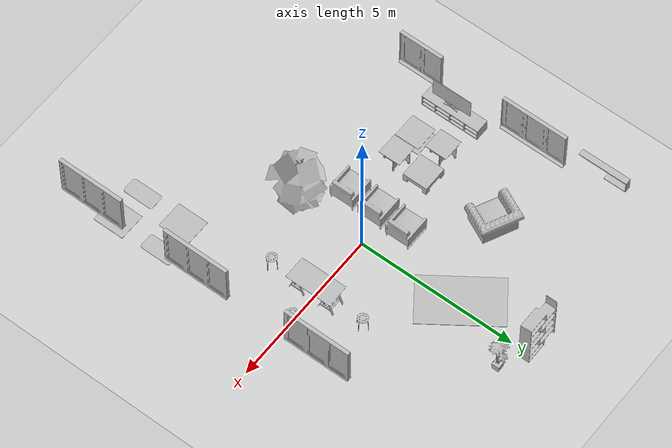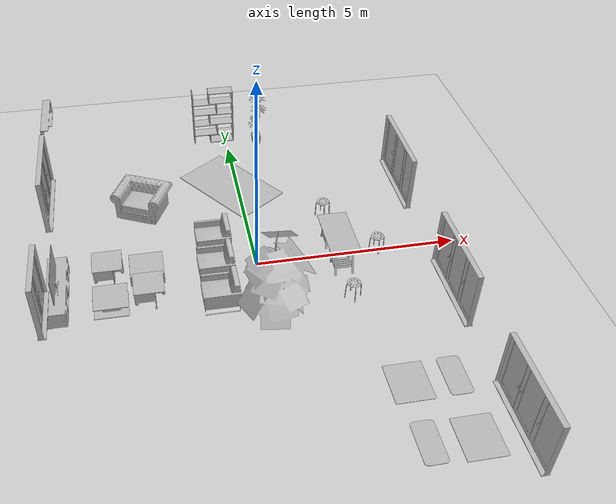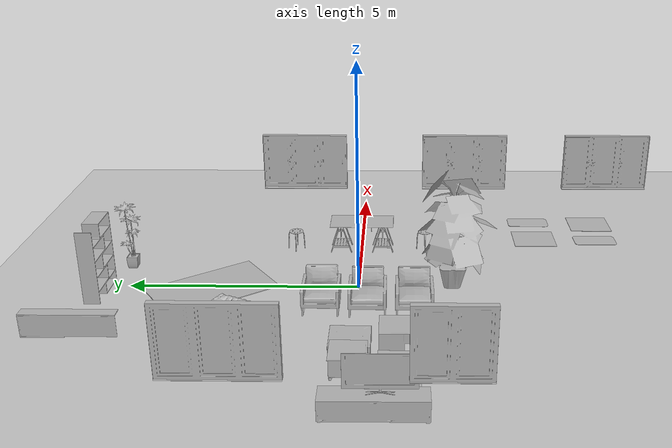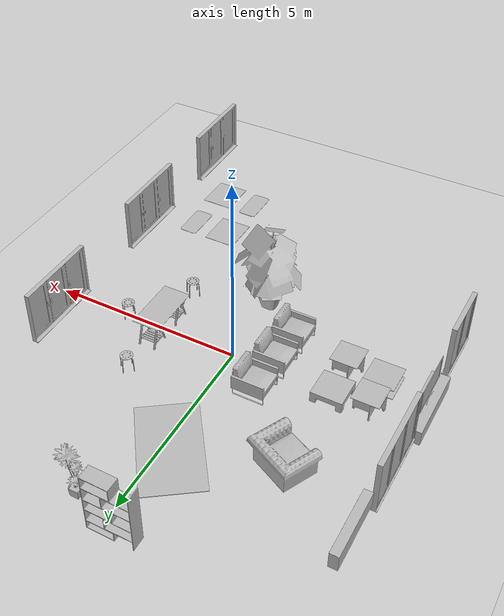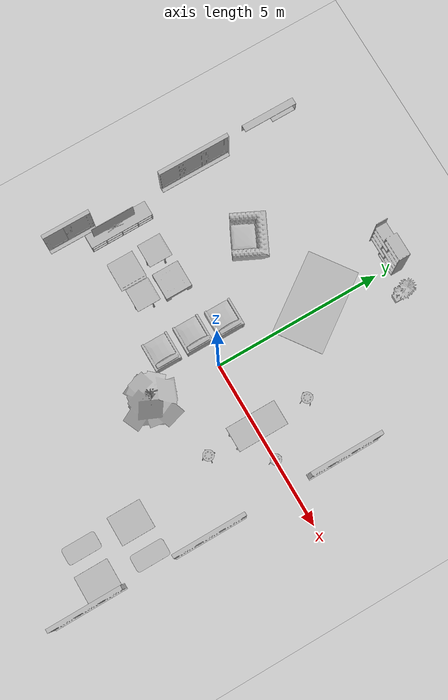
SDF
<sdf version="1.4">
 <world name="default">
  <light name="sun" type="directional">
   <pose>0 0 10 0 -0 0</pose>
   <diffuse>0.8 0.8 0.8 1</diffuse>
   <specular>0.2 0.2 0.2 1</specular>
   <attenuation>
    <range>1000</range>
    <constant>0.9</constant>
    <linear>0.01</linear>
    <quadratic>0.001</quadratic>
   </attenuation>
   <direction>-0.5 0.1 -0.9</direction>
  </light>
  <model name="ground_plane">
   <static>1</static>
   <link name="link">
    <collision name="collision">
     <geometry><plane><normal>0 0 1</normal><size>100 100</size></plane></geometry>
     <surface><friction><ode><mu>100</mu><mu2>50</mu2></ode></friction></surface>
    </collision>
    <visual name="visual">
     <cast_shadows>0</cast_shadows>
     <geometry><plane><normal>0 0 1</normal><size>100 100</size></plane></geometry>
     <material>
      <script><uri>file://media/materials/scripts/gazebo.material</uri><name>Gazebo/Grey</name></script>
     </material>
    </visual>
    <velocity_decay><linear>0</linear><angular>0</angular></velocity_decay>
   </link>
  </model>
  <physics type="ode">
   <max_step_size>0.001</max_step_size>
   <real_time_factor>1</real_time_factor>
   <real_time_update_rate>1000</real_time_update_rate>
   <gravity>0 0 -9.8</gravity>
  </physics>
  <scene><ambient>0.4 0.4 0.4 1</ambient><background>0.7 0.7 0.7 1</background><shadows>1</shadows></scene>
  <spherical_coordinates>
   <surface_model>EARTH_WGS84</surface_model>
   <latitude_deg>0</latitude_deg>
   <longitude_deg>0</longitude_deg>
   <elevation>0</elevation>
   <heading_deg>0</heading_deg>
  </spherical_coordinates>
  <model name="348_0">
   <pose>-1.04675 -1.18198 0.05 0 0 -3.14159</pose>
   <static>1</static>
   <link name="link">
    <collision name="collision"><geometry><box><size>0.85 0.77976 2</size></box></geometry></collision>
    <visual name="visual"><geometry><mesh><uri>model://348/348.dae</uri></mesh></geometry></visual>
    <velocity_decay><linear>0</linear><angular>0</angular></velocity_decay>
   </link>
  </model>
  <model name="348_1">
   <pose>-1.03475 -0.221976 0.05 0 0 -3.14159</pose>
   <static>1</static>
   <link name="link">
    <collision name="collision"><geometry><box><size>0.85 0.77976 2</size></box></geometry></collision>
    <visual name="visual"><geometry><mesh><uri>model://348/348.dae</uri></mesh></geometry></visual>
    <velocity_decay><linear>0</linear><angular>0</angular></velocity_decay>
   </link>
  </model>
  <model name="348_2">
   <pose>-0.986749 0.738023 0.05 0 0 -3.14159</pose>
   <static>1</static>
   <link name="link">
    <collision name="collision"><geometry><box><size>0.85 0.77976 2</size></box></geometry></collision>
    <visual name="visual"><geometry><mesh><uri>model://348/348.dae</uri></mesh></geometry></visual>
    <velocity_decay><linear>0</linear><angular>0</angular></velocity_decay>
   </link>
  </model>
  <model name="261_0">
   <pose>-2.59475 2.47802 0.05 0 0 -2.02327</pose>
   <static>1</static>
   <link name="link">
    <collision name="collision"><geometry><box><size>1.00905 1.31 2</size></box></geometry></collision>
    <visual name="visual"><geometry><mesh><uri>model://261/261.dae</uri></mesh></geometry></visual>
    <velocity_decay><linear>0</linear><angular>0</angular></velocity_decay>
   </link>
  </model>
  <model name="115_0">
   <pose>-4.71875 -0.437976 0.05 0 -0 0</pose>
   <static>1</static>
   <link name="link">
    <collision name="collision"><geometry><box><size>0.45 1.90002 2</size></box></geometry></collision>
    <visual name="visual"><geometry><mesh><uri>model://115/115.dae</uri></mesh></geometry></visual>
    <velocity_decay><linear>0</linear><angular>0</angular></velocity_decay>
   </link>
  </model>
  <model name="207_0">
   <pose>-4.85075 4.38602 1.65 0 -0 0</pose>
   <static>1</static>
   <link name="link">
    <collision name="collision"><geometry><box><size>0.2 1.55 2</size></box></geometry></collision>
    <visual name="visual"><geometry><mesh><uri>model://207/207.dae</uri></mesh></geometry></visual>
    <velocity_decay><linear>0</linear><angular>0</angular></velocity_decay>
   </link>
  </model>
  <model name="293_0">
   <pose>-0.350748 5.53802 0.05 0 0 -1.5708</pose>
   <static>1</static>
   <link name="link">
    <collision name="collision"><geometry><box><size>0.35 1.15 2</size></box></geometry></collision>
    <visual name="visual"><geometry><mesh><uri>model://293/293.dae</uri></mesh></geometry></visual>
    <velocity_decay><linear>0</linear><angular>0</angular></velocity_decay>
   </link>
  </model>
  <model name="210_0">
   <pose>-4.86314 2.08359 0.85 0 0 -0.002688</pose>
   <static>1</static>
   <link name="link">
    <collision name="collision"><geometry><box><size>0.175 2.1 2</size></box></geometry></collision>
    <visual name="visual"><geometry><mesh><uri>model://210/210.dae</uri></mesh></geometry></visual>
    <velocity_decay><linear>0</linear><angular>0</angular></velocity_decay>
   </link>
  </model>
  <model name="623_0">
   <pose>0.897251 5.20203 0.05 0 -0 0</pose>
   <static>1</static>
   <link name="link">
    <collision name="collision"><geometry><box><size>0.529798 0.561408 2</size></box></geometry></collision>
    <visual name="visual"><geometry><mesh><uri>model://623/623.dae</uri></mesh></geometry></visual>
    <velocity_decay><linear>0</linear><angular>0</angular></velocity_decay>
   </link>
  </model>
  <model name="734_0">
   <pose>0.093253 -2.11798 0.05 0 -0 0</pose>
   <static>1</static>
   <link name="link">
    <collision name="collision"><geometry><box><size>1.73262 1.70667 2</size></box></geometry></collision>
    <visual name="visual"><geometry><mesh><uri>model://734/734.dae</uri></mesh></geometry></visual>
    <velocity_decay><linear>0</linear><angular>0</angular></velocity_decay>
   </link>
  </model>
  <model name="552_0">
   <pose>-2.64275 -0.833979 0.05 0 -0 0</pose>
   <static>1</static>
   <link name="link">
    <collision name="collision"><geometry><box><size>0.7 0.7 2</size></box></geometry></collision>
    <visual name="visual"><geometry><mesh><uri>model://552/552.dae</uri></mesh></geometry></visual>
    <velocity_decay><linear>0</linear><angular>0</angular></velocity_decay>
   </link>
  </model>
  <model name="555_0">
   <pose>-2.65475 0.066021 0.05 0 -0 0</pose>
   <static>1</static>
   <link name="link">
    <collision name="collision"><geometry><box><size>0.8 0.8 2</size></box></geometry></collision>
    <visual name="visual"><geometry><mesh><uri>model://555/555.dae</uri></mesh></geometry></visual>
    <velocity_decay><linear>0</linear><angular>0</angular></velocity_decay>
   </link>
  </model>
  <model name="542_0">
   <pose>-3.53075 -0.869977 0.05 0 -0 0</pose>
   <static>1</static>
   <link name="link">
    <collision name="collision"><geometry><box><size>0.79 0.79 2</size></box></geometry></collision>
    <visual name="visual"><geometry><mesh><uri>model://542/542.dae</uri></mesh></geometry></visual>
    <velocity_decay><linear>0</linear><angular>0</angular></velocity_decay>
   </link>
  </model>
  <model name="552_1">
   <pose>-3.55475 0.054023 0.05 0 -0 0</pose>
   <static>1</static>
   <link name="link">
    <collision name="collision"><geometry><box><size>0.7 0.7 2</size></box></geometry></collision>
    <visual name="visual"><geometry><mesh><uri>model://552/552.dae</uri></mesh></geometry></visual>
    <velocity_decay><linear>0</linear><angular>0</angular></velocity_decay>
   </link>
  </model>
  <model name="114_0">
   <pose>-4.70675 -0.545977 0.480001 0 -0 0</pose>
   <static>1</static>
   <link name="link">
    <collision name="collision"><geometry><box><size>0.09995 1.28 2</size></box></geometry></collision>
    <visual name="visual"><geometry><mesh><uri>model://114/114.dae</uri></mesh></geometry></visual>
    <velocity_decay><linear>0</linear><angular>0</angular></velocity_decay>
   </link>
  </model>
  <model name="238_0">
   <pose>-0.182747 3.17402 0.05 0 -0 0.617739</pose>
   <static>1</static>
   <link name="link">
    <collision name="collision"><geometry><box><size>1.5 2.5 0</size></box></geometry></collision>
    <visual name="visual"><geometry><mesh><uri>model://238/238.dae</uri></mesh></geometry></visual>
    <velocity_decay><linear>0</linear><angular>0</angular></velocity_decay>
   </link>
  </model>
  <model name="235_0">
   <pose>2.39725 -5.62198 0.05 0 -0 0</pose>
   <static>1</static>
   <link name="link">
    <collision name="collision"><geometry><box><size>0.5 1 0</size></box></geometry></collision>
    <visual name="visual"><geometry><mesh><uri>model://235/235.dae</uri></mesh></geometry></visual>
    <velocity_decay><linear>0</linear><angular>0</angular></velocity_decay>
   </link>
  </model>
  <model name="153_0">
   <pose>2.46925 -4.15798 0.05 0 -0 0</pose>
   <static>1</static>
   <link name="link">
    <collision name="collision"><geometry><box><size>0.86 1 0</size></box></geometry></collision>
    <visual name="visual"><geometry><mesh><uri>model://153/153.dae</uri></mesh></geometry></visual>
    <velocity_decay><linear>0</linear><angular>0</angular></velocity_decay>
   </link>
  </model>
  <model name="235_1">
   <pose>3.47725 -4.14598 0.05 0 -0 0</pose>
   <static>1</static>
   <link name="link">
    <collision name="collision"><geometry><box><size>0.5 1 0</size></box></geometry></collision>
    <visual name="visual"><geometry><mesh><uri>model://235/235.dae</uri></mesh></geometry></visual>
    <velocity_decay><linear>0</linear><angular>0</angular></velocity_decay>
   </link>
  </model>
  <model name="153_1">
   <pose>3.39325 -5.66998 0.05 0 -0 0</pose>
   <static>1</static>
   <link name="link">
    <collision name="collision"><geometry><box><size>0.86 1 0</size></box></geometry></collision>
    <visual name="visual"><geometry><mesh><uri>model://153/153.dae</uri></mesh></geometry></visual>
    <velocity_decay><linear>0</linear><angular>0</angular></velocity_decay>
   </link>
  </model>
  <model name="211_0">
   <pose>3.87837 -6.06598 0.85 0 -0 3.14159</pose>
   <static>1</static>
   <link name="link">
    <collision name="collision"><geometry><box><size>0.175 2.1 2</size></box></geometry></collision>
    <visual name="visual"><geometry><mesh><uri>model://211/211.dae</uri></mesh></geometry></visual>
    <velocity_decay><linear>0</linear><angular>0</angular></velocity_decay>
   </link>
  </model>
  <model name="210_1">
   <pose>3.87395 -2.51398 0.85 0 -0 3.14159</pose>
   <static>1</static>
   <link name="link">
    <collision name="collision"><geometry><box><size>0.175 2.1 2</size></box></geometry></collision>
    <visual name="visual"><geometry><mesh><uri>model://210/210.dae</uri></mesh></geometry></visual>
    <velocity_decay><linear>0</linear><angular>0</angular></velocity_decay>
   </link>
  </model>
  <model name="211_1">
   <pose>3.86514 1.49402 0.85 0 -0 3.14159</pose>
   <static>1</static>
   <link name="link">
    <collision name="collision"><geometry><box><size>0.175 2.1 2</size></box></geometry></collision>
    <visual name="visual"><geometry><mesh><uri>model://211/211.dae</uri></mesh></geometry></visual>
    <velocity_decay><linear>0</linear><angular>0</angular></velocity_decay>
   </link>
  </model>
  <model name="212_0">
   <pose>-4.89027 -1.7239 0.85 0 0 -0.002688</pose>
   <static>1</static>
   <link name="link">
    <collision name="collision"><geometry><box><size>0.175 1.4 2</size></box></geometry></collision>
    <visual name="visual"><geometry><mesh><uri>model://212/212.dae</uri></mesh></geometry></visual>
    <velocity_decay><linear>0</linear><angular>0</angular></velocity_decay>
   </link>
  </model>
  <model name="s__734">
   <pose>2 0 0 0 -0 0</pose>
   <static>1</static>
   <link name="link">
    <collision name="collision"><geometry><box><size>0.730085 1.48 2</size></box></geometry></collision>
    <visual name="visual"><geometry><mesh><uri>model://s__734/s__734.dae</uri></mesh></geometry></visual>
    <velocity_decay><linear>0</linear><angular>0</angular></velocity_decay>
   </link>
  </model>
  <model name="s__724">
   <pose>2 -1.49022 0 0 -0 0</pose>
   <static>1</static>
   <link name="link">
    <collision name="collision"><geometry><box><size>0.399998 0.399998 2</size></box></geometry></collision>
    <visual name="visual"><geometry><mesh><uri>model://s__724/s__724.dae</uri></mesh></geometry></visual>
    <velocity_decay><linear>0</linear><angular>0</angular></velocity_decay>
   </link>
  </model>
  <model name="s__724_0">
   <pose>2 1.56809 0 0 -0 0</pose>
   <static>1</static>
   <link name="link">
    <collision name="collision"><geometry><box><size>0.399998 0.399998 2</size></box></geometry></collision>
    <visual name="visual"><geometry><mesh><uri>model://s__724/s__724.dae</uri></mesh></geometry></visual>
    <velocity_decay><linear>0</linear><angular>0</angular></velocity_decay>
   </link>
  </model>
  <model name="s__724_1">
   <pose>3 0 0 0 -0 0</pose>
   <static>1</static>
   <link name="link">
    <collision name="collision"><geometry><box><size>0.399998 0.399998 2</size></box></geometry></collision>
    <visual name="visual"><geometry><mesh><uri>model://s__724/s__724.dae</uri></mesh></geometry></visual>
    <velocity_decay><linear>0</linear><angular>0</angular></velocity_decay>
   </link>
  </model>
 </world>
</sdf>
